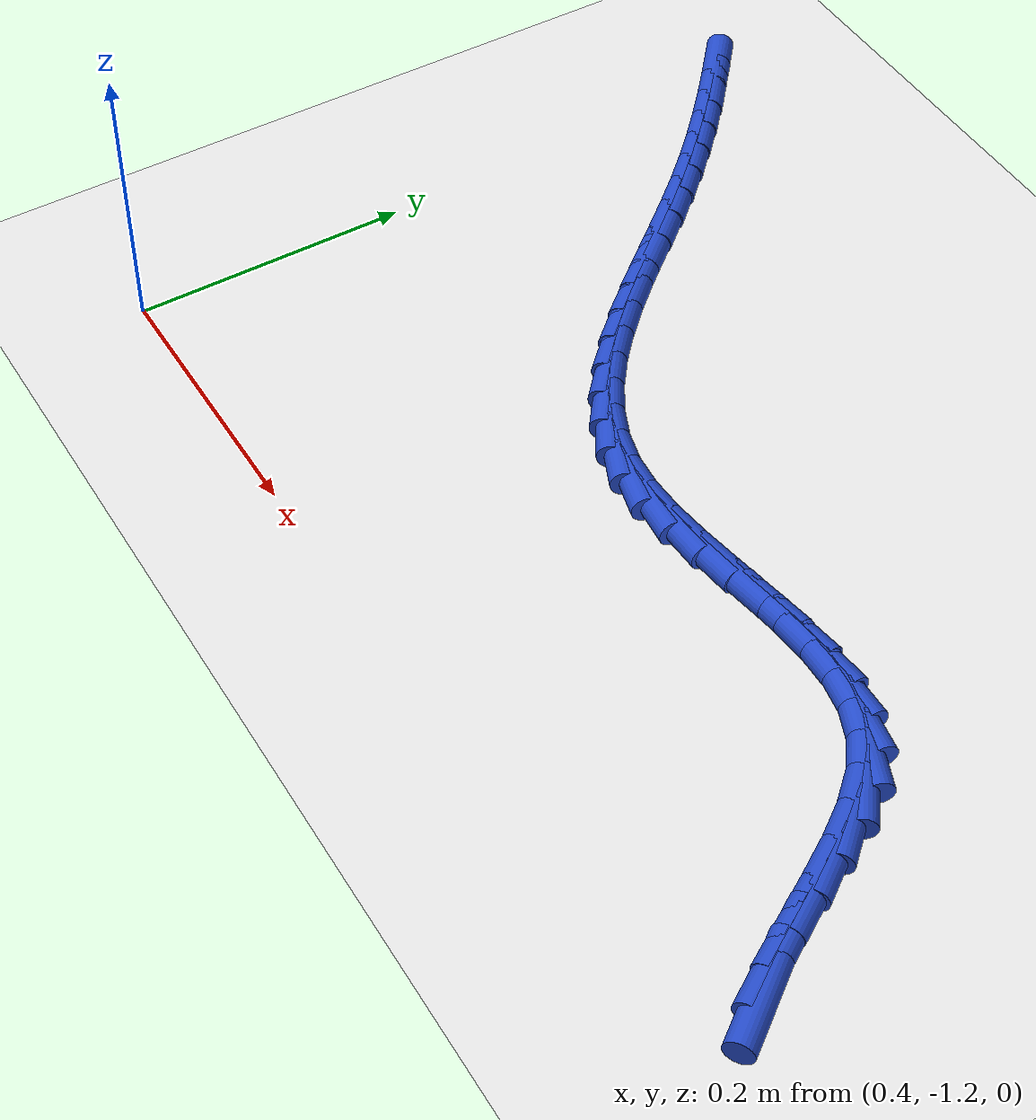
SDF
<sdf version="1.6">
 <world name="default">
  <model name="ground_plane">
   <static>1</static>
   <link name="link">
    <collision name="collision">
     <geometry><plane><normal>0 0 1</normal><size>100 100</size></plane></geometry>
     <surface><friction><ode><mu>100</mu><mu2>50</mu2></ode></friction></surface>
    </collision>
    <visual name="visual">
     <cast_shadows>0</cast_shadows>
     <geometry><plane><normal>0 0 1</normal><size>100 100</size></plane></geometry>
     <material>
      <script><uri>file://media/materials/scripts/gazebo.material</uri><name>Gazebo/WhiteGlow</name></script>
     </material>
    </visual>
   </link>
  </model>
  <model name="line">
   <link name="link_203">
    <pose>1.0682778255675223 -1.140198325811973 0.01 0 1.57 -0.9367171040716539</pose>
    <collision name="collision">
     <geometry><cylinder><radius>0.01</radius><length>0.08</length></cylinder></geometry>
    </collision>
    <visual name="visual">
     <material>
      <script><name>Gazebo/Blue</name><uri>file://media/materials/scripts/gazebo.material</uri></script>
     </material>
     <geometry><cylinder><radius>0.01</radius><length>0.08</length></cylinder></geometry>
    </visual>
   </link>
   <link name="link_204">
    <pose>1.0541122144641515 -1.1209353753570357 0.01 0 1.57 -1.0182083435203617</pose>
    <collision name="collision">
     <geometry><cylinder><radius>0.01</radius><length>0.08</length></cylinder></geometry>
    </collision>
    <visual name="visual">
     <material>
      <script><name>Gazebo/Blue</name><uri>file://media/materials/scripts/gazebo.material</uri></script>
     </material>
     <geometry><cylinder><radius>0.01</radius><length>0.08</length></cylinder></geometry>
    </visual>
   </link>
   <link name="link_205">
    <pose>1.040119133080471 -1.0982440765506054 0.01 0 1.57 -1.0426363638873417</pose>
    <collision name="collision">
     <geometry><cylinder><radius>0.01</radius><length>0.08</length></cylinder></geometry>
    </collision>
    <visual name="visual">
     <material>
      <script><name>Gazebo/Blue</name><uri>file://media/materials/scripts/gazebo.material</uri></script>
     </material>
     <geometry><cylinder><radius>0.01</radius><length>0.08</length></cylinder></geometry>
    </visual>
   </link>
   <link name="link_206">
    <pose>1.0258586948916977 -1.073802413614337 0.01 0 1.57 -1.0226367659129316</pose>
    <collision name="collision">
     <geometry><cylinder><radius>0.01</radius><length>0.08</length></cylinder></geometry>
    </collision>
    <visual name="visual">
     <material>
      <script><name>Gazebo/Blue</name><uri>file://media/materials/scripts/gazebo.material</uri></script>
     </material>
     <geometry><cylinder><radius>0.01</radius><length>0.08</length></cylinder></geometry>
    </visual>
   </link>
   <link name="link_207">
    <pose>1.0108910133730455 -1.0492883707698812 0.01 0 1.57 -0.957762464891096</pose>
    <collision name="collision">
     <geometry><cylinder><radius>0.01</radius><length>0.08</length></cylinder></geometry>
    </collision>
    <visual name="visual">
     <material>
      <script><name>Gazebo/Blue</name><uri>file://media/materials/scripts/gazebo.material</uri></script>
     </material>
     <geometry><cylinder><radius>0.01</radius><length>0.08</length></cylinder></geometry>
    </visual>
   </link>
   <link name="link_208">
    <pose>0.9947762019997308 -1.0263799322388922 0.01 0 1.57 -0.8368713647619056</pose>
    <collision name="collision">
     <geometry><cylinder><radius>0.01</radius><length>0.08</length></cylinder></geometry>
    </collision>
    <visual name="visual">
     <material>
      <script><name>Gazebo/Blue</name><uri>file://media/materials/scripts/gazebo.material</uri></script>
     </material>
     <geometry><cylinder><radius>0.01</radius><length>0.08</length></cylinder></geometry>
    </visual>
   </link>
   <link name="link_209">
    <pose>0.9770743742469683 -1.0067550822430211 0.01 0 1.57 -0.6398967500043649</pose>
    <collision name="collision">
     <geometry><cylinder><radius>0.01</radius><length>0.08</length></cylinder></geometry>
    </collision>
    <visual name="visual">
     <material>
      <script><name>Gazebo/Blue</name><uri>file://media/materials/scripts/gazebo.material</uri></script>
     </material>
     <geometry><cylinder><radius>0.01</radius><length>0.08</length></cylinder></geometry>
    </visual>
   </link>
   <link name="link_210">
    <pose>0.9573512080568173 -0.9920734857535389 0.01 0 1.57 -0.39386245782551693</pose>
    <collision name="collision">
     <geometry><cylinder><radius>0.01</radius><length>0.08</length></cylinder></geometry>
    </collision>
    <visual name="visual">
     <material>
      <script><name>Gazebo/Blue</name><uri>file://media/materials/scripts/gazebo.material</uri></script>
     </material>
     <geometry><cylinder><radius>0.01</radius><length>0.08</length></cylinder></geometry>
    </visual>
   </link>
   <link name="link_211">
    <pose>0.9354793959086934 -0.9829840593016519 0.01 0 1.57 -0.182283960985456</pose>
    <collision name="collision">
     <geometry><cylinder><radius>0.01</radius><length>0.08</length></cylinder></geometry>
    </collision>
    <visual name="visual">
     <material>
      <script><name>Gazebo/Blue</name><uri>file://media/materials/scripts/gazebo.material</uri></script>
     </material>
     <geometry><cylinder><radius>0.01</radius><length>0.08</length></cylinder></geometry>
    </visual>
   </link>
   <link name="link_212">
    <pose>0.9117926726005344 -0.9786178831354526 0.01 0 1.57 -0.025337588012537937</pose>
    <collision name="collision">
     <geometry><cylinder><radius>0.01</radius><length>0.08</length></cylinder></geometry>
    </collision>
    <visual name="visual">
     <material>
      <script><name>Gazebo/Blue</name><uri>file://media/materials/scripts/gazebo.material</uri></script>
     </material>
     <geometry><cylinder><radius>0.01</radius><length>0.08</length></cylinder></geometry>
    </visual>
   </link>
   <link name="link_213">
    <pose>0.8866627484249229 -0.9779810151757361 0.01 0 1.57 0.07992043134421525</pose>
    <collision name="collision">
     <geometry><cylinder><radius>0.01</radius><length>0.08</length></cylinder></geometry>
    </collision>
    <visual name="visual">
     <material>
      <script><name>Gazebo/Blue</name><uri>file://media/materials/scripts/gazebo.material</uri></script>
     </material>
     <geometry><cylinder><radius>0.01</radius><length>0.08</length></cylinder></geometry>
    </visual>
   </link>
   <link name="link_214">
    <pose>0.8604613336744432 -0.9800795133432962 0.01 0 1.57 0.14178391530152118</pose>
    <collision name="collision">
     <geometry><cylinder><radius>0.01</radius><length>0.08</length></cylinder></geometry>
    </collision>
    <visual name="visual">
     <material>
      <script><name>Gazebo/Blue</name><uri>file://media/materials/scripts/gazebo.material</uri></script>
     </material>
     <geometry><cylinder><radius>0.01</radius><length>0.08</length></cylinder></geometry>
    </visual>
   </link>
   <link name="link_215">
    <pose>0.8335601386416785 -0.9839194355589286 0.01 0 1.57 0.16690596795294663</pose>
    <collision name="collision">
     <geometry><cylinder><radius>0.01</radius><length>0.08</length></cylinder></geometry>
    </collision>
    <visual name="visual">
     <material>
      <script><name>Gazebo/Blue</name><uri>file://media/materials/scripts/gazebo.material</uri></script>
     </material>
     <geometry><cylinder><radius>0.01</radius><length>0.08</length></cylinder></geometry>
    </visual>
   </link>
   <link name="link_216">
    <pose>0.8063308736192122 -0.988506839743428 0.01 0 1.57 0.1583412081876839</pose>
    <collision name="collision">
     <geometry><cylinder><radius>0.01</radius><length>0.08</length></cylinder></geometry>
    </collision>
    <visual name="visual">
     <material>
      <script><name>Gazebo/Blue</name><uri>file://media/materials/scripts/gazebo.material</uri></script>
     </material>
     <geometry><cylinder><radius>0.01</radius><length>0.08</length></cylinder></geometry>
    </visual>
   </link>
   <link name="link_217">
    <pose>0.779145248899628 -0.9928477838175876 0.01 0 1.57 0.11530657032011926</pose>
    <collision name="collision">
     <geometry><cylinder><radius>0.01</radius><length>0.08</length></cylinder></geometry>
    </collision>
    <visual name="visual">
     <material>
      <script><name>Gazebo/Blue</name><uri>file://media/materials/scripts/gazebo.material</uri></script>
     </material>
     <geometry><cylinder><radius>0.01</radius><length>0.08</length></cylinder></geometry>
    </visual>
   </link>
   <link name="link_218">
    <pose>0.7523749747755085 -0.9959483257022037 0.01 0 1.57 0.033324475337590705</pose>
    <collision name="collision">
     <geometry><cylinder><radius>0.01</radius><length>0.08</length></cylinder></geometry>
    </collision>
    <visual name="visual">
     <material>
      <script><name>Gazebo/Blue</name><uri>file://media/materials/scripts/gazebo.material</uri></script>
     </material>
     <geometry><cylinder><radius>0.01</radius><length>0.08</length></cylinder></geometry>
    </visual>
   </link>
   <link name="link_219">
    <pose>0.7263917615394389 -0.9968145233180701 0.01 0 1.57 -0.09481998396518235</pose>
    <collision name="collision">
     <geometry><cylinder><radius>0.01</radius><length>0.08</length></cylinder></geometry>
    </collision>
    <visual name="visual">
     <material>
      <script><name>Gazebo/Blue</name><uri>file://media/materials/scripts/gazebo.material</uri></script>
     </material>
     <geometry><cylinder><radius>0.01</radius><length>0.08</length></cylinder></geometry>
    </visual>
   </link>
   <link name="link_220">
    <pose>0.7015669180020726 -0.9944535521107766 0.01 0 1.57 -0.2586022272743205</pose>
    <collision name="collision">
     <geometry><cylinder><radius>0.01</radius><length>0.08</length></cylinder></geometry>
    </collision>
    <visual name="visual">
     <material>
      <script><name>Gazebo/Blue</name><uri>file://media/materials/scripts/gazebo.material</uri></script>
     </material>
     <geometry><cylinder><radius>0.01</radius><length>0.08</length></cylinder></geometry>
    </visual>
   </link>
   <link name="link_221">
    <pose>0.6781343520148112 -0.9882550430437833 0.01 0 1.57 -0.4131443819958832</pose>
    <collision name="collision">
     <geometry><cylinder><radius>0.01</radius><length>0.08</length></cylinder></geometry>
    </collision>
    <visual name="visual">
     <material>
      <script><name>Gazebo/Blue</name><uri>file://media/materials/scripts/gazebo.material</uri></script>
     </material>
     <geometry><cylinder><radius>0.01</radius><length>0.08</length></cylinder></geometry>
    </visual>
   </link>
   <link name="link_222">
    <pose>0.6559905745416592 -0.9785477711883875 0.01 0 1.57 -0.5453092850909845</pose>
    <collision name="collision">
     <geometry><cylinder><radius>0.01</radius><length>0.08</length></cylinder></geometry>
    </collision>
    <visual name="visual">
     <material>
      <script><name>Gazebo/Blue</name><uri>file://media/materials/scripts/gazebo.material</uri></script>
     </material>
     <geometry><cylinder><radius>0.01</radius><length>0.08</length></cylinder></geometry>
    </visual>
   </link>
   <link name="link_223">
    <pose>0.6349812479320287 -0.9658020487152924 0.01 0 1.57 -0.6527648290036481</pose>
    <collision name="collision">
     <geometry><cylinder><radius>0.01</radius><length>0.08</length></cylinder></geometry>
    </collision>
    <visual name="visual">
     <material>
      <script><name>Gazebo/Blue</name><uri>file://media/materials/scripts/gazebo.material</uri></script>
     </material>
     <geometry><cylinder><radius>0.01</radius><length>0.08</length></cylinder></geometry>
    </visual>
   </link>
   <link name="link_224">
    <pose>0.6149520345353284 -0.9504881877951987 0.01 0 1.57 -0.7365024540762735</pose>
    <collision name="collision">
     <geometry><cylinder><radius>0.01</radius><length>0.08</length></cylinder></geometry>
    </collision>
    <visual name="visual">
     <material>
      <script><name>Gazebo/Blue</name><uri>file://media/materials/scripts/gazebo.material</uri></script>
     </material>
     <geometry><cylinder><radius>0.01</radius><length>0.08</length></cylinder></geometry>
    </visual>
   </link>
   <link name="link_225">
    <pose>0.59574859670097 -0.9330765005988102 0.01 0 1.57 -0.7988970815827825</pose>
    <collision name="collision">
     <geometry><cylinder><radius>0.01</radius><length>0.08</length></cylinder></geometry>
    </collision>
    <visual name="visual">
     <material>
      <script><name>Gazebo/Blue</name><uri>file://media/materials/scripts/gazebo.material</uri></script>
     </material>
     <geometry><cylinder><radius>0.01</radius><length>0.08</length></cylinder></geometry>
    </visual>
   </link>
   <link name="link_226">
    <pose>0.577216596778363 -0.9140372992968278 0.01 0 1.57 -0.8424267898822853</pose>
    <collision name="collision">
     <geometry><cylinder><radius>0.01</radius><length>0.08</length></cylinder></geometry>
    </collision>
    <visual name="visual">
     <material>
      <script><name>Gazebo/Blue</name><uri>file://media/materials/scripts/gazebo.material</uri></script>
     </material>
     <geometry><cylinder><radius>0.01</radius><length>0.08</length></cylinder></geometry>
    </visual>
   </link>
   <link name="link_227">
    <pose>0.5592016971169176 -0.8938408960599534 0.01 0 1.57 -0.8690514496079798</pose>
    <collision name="collision">
     <geometry><cylinder><radius>0.01</radius><length>0.08</length></cylinder></geometry>
    </collision>
    <visual name="visual">
     <material>
      <script><name>Gazebo/Blue</name><uri>file://media/materials/scripts/gazebo.material</uri></script>
     </material>
     <geometry><cylinder><radius>0.01</radius><length>0.08</length></cylinder></geometry>
    </visual>
   </link>
   <link name="link_228">
    <pose>0.5415495600660446 -0.8729576030588899 0.01 0 1.57 -0.8799729548459341</pose>
    <collision name="collision">
     <geometry><cylinder><radius>0.01</radius><length>0.08</length></cylinder></geometry>
    </collision>
    <visual name="visual">
     <material>
      <script><name>Gazebo/Blue</name><uri>file://media/materials/scripts/gazebo.material</uri></script>
     </material>
     <geometry><cylinder><radius>0.01</radius><length>0.08</length></cylinder></geometry>
    </visual>
   </link>
   <link name="link_229">
    <pose>0.5241058479751537 -0.8518577324643386 0.01 0 1.57 -0.875553069470985</pose>
    <collision name="collision">
     <geometry><cylinder><radius>0.01</radius><length>0.08</length></cylinder></geometry>
    </collision>
    <visual name="visual">
     <material>
      <script><name>Gazebo/Blue</name><uri>file://media/materials/scripts/gazebo.material</uri></script>
     </material>
     <geometry><cylinder><radius>0.01</radius><length>0.08</length></cylinder></geometry>
    </visual>
   </link>
   <link name="link_230">
    <pose>0.506716223193656 -0.8310115964470022 0.01 0 1.57 -0.8553799397952891</pose>
    <collision name="collision">
     <geometry><cylinder><radius>0.01</radius><length>0.08</length></cylinder></geometry>
    </collision>
    <visual name="visual">
     <material>
      <script><name>Gazebo/Blue</name><uri>file://media/materials/scripts/gazebo.material</uri></script>
     </material>
     <geometry><cylinder><radius>0.01</radius><length>0.08</length></cylinder></geometry>
    </visual>
   </link>
   <link name="link_231">
    <pose>0.48922709753112387 -0.810885806451977 0.01 0 1.57 -0.8251501465070069</pose>
    <collision name="collision">
     <geometry><cylinder><radius>0.01</radius><length>0.08</length></cylinder></geometry>
    </collision>
    <visual name="visual">
     <material>
      <script><name>Gazebo/Blue</name><uri>file://media/materials/scripts/gazebo.material</uri></script>
     </material>
     <geometry><cylinder><radius>0.01</radius><length>0.08</length></cylinder></geometry>
    </visual>
   </link>
   <link name="link_232">
    <pose>0.47153025288316175 -0.7917229430187723 0.01 0 1.57 -0.7954266934893212</pose>
    <collision name="collision">
     <geometry><cylinder><radius>0.01</radius><length>0.08</length></cylinder></geometry>
    </collision>
    <visual name="visual">
     <material>
      <script><name>Gazebo/Blue</name><uri>file://media/materials/scripts/gazebo.material</uri></script>
     </material>
     <geometry><cylinder><radius>0.01</radius><length>0.08</length></cylinder></geometry>
    </visual>
   </link>
   <link name="link_233">
    <pose>0.453588027184035 -0.7734171911994719 0.01 0 1.57 -0.7676752452044252</pose>
    <collision name="collision">
     <geometry><cylinder><radius>0.01</radius><length>0.08</length></cylinder></geometry>
    </collision>
    <visual name="visual">
     <material>
      <script><name>Gazebo/Blue</name><uri>file://media/materials/scripts/gazebo.material</uri></script>
     </material>
     <geometry><cylinder><radius>0.01</radius><length>0.08</length></cylinder></geometry>
    </visual>
   </link>
   <link name="link_234">
    <pose>0.4353688549490231 -0.7558326320132088 0.01 0 1.57 -0.7424038731002377</pose>
    <collision name="collision">
     <geometry><cylinder><radius>0.01</radius><length>0.08</length></cylinder></geometry>
    </collision>
    <visual name="visual">
     <material>
      <script><name>Gazebo/Blue</name><uri>file://media/materials/scripts/gazebo.material</uri></script>
     </material>
     <geometry><cylinder><radius>0.01</radius><length>0.08</length></cylinder></geometry>
    </visual>
   </link>
   <link name="link_235">
    <pose>0.4168411706934035 -0.7388333464791146 0.01 0 1.57 -0.7200486077128506</pose>
    <collision name="collision">
     <geometry><cylinder><radius>0.01</radius><length>0.08</length></cylinder></geometry>
    </collision>
    <visual name="visual">
     <material>
      <script><name>Gazebo/Blue</name><uri>file://media/materials/scripts/gazebo.material</uri></script>
     </material>
     <geometry><cylinder><radius>0.01</radius><length>0.08</length></cylinder></geometry>
    </visual>
   </link>
   <link name="link_236">
    <pose>0.3979734089324535 -0.7222834156163203 0.01 0 1.57 -0.7009529967567345</pose>
    <collision name="collision">
     <geometry><cylinder><radius>0.01</radius><length>0.08</length></cylinder></geometry>
    </collision>
    <visual name="visual">
     <material>
      <script><name>Gazebo/Blue</name><uri>file://media/materials/scripts/gazebo.material</uri></script>
     </material>
     <geometry><cylinder><radius>0.01</radius><length>0.08</length></cylinder></geometry>
    </visual>
   </link>
  </model>
 </world>
</sdf>
